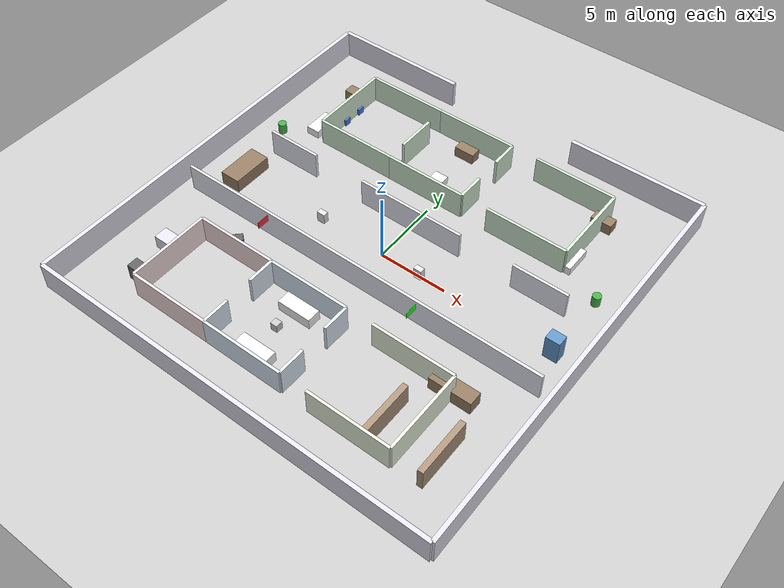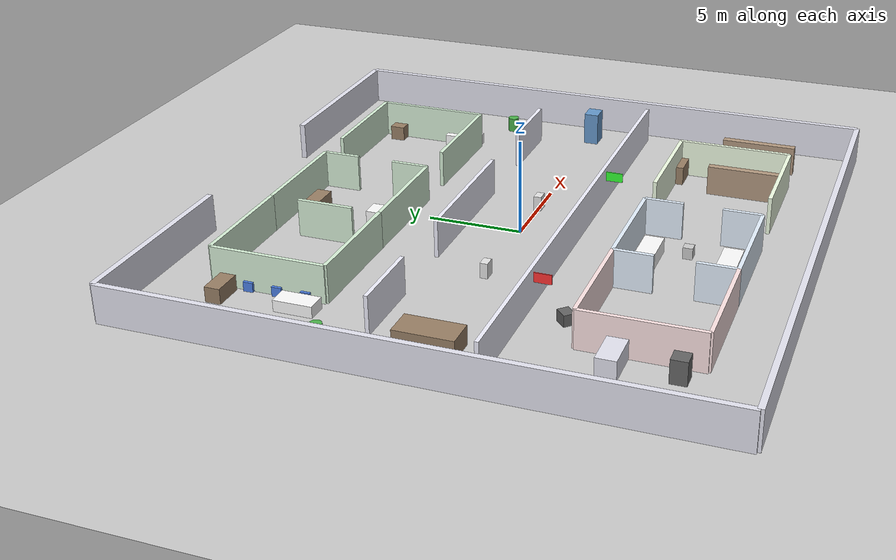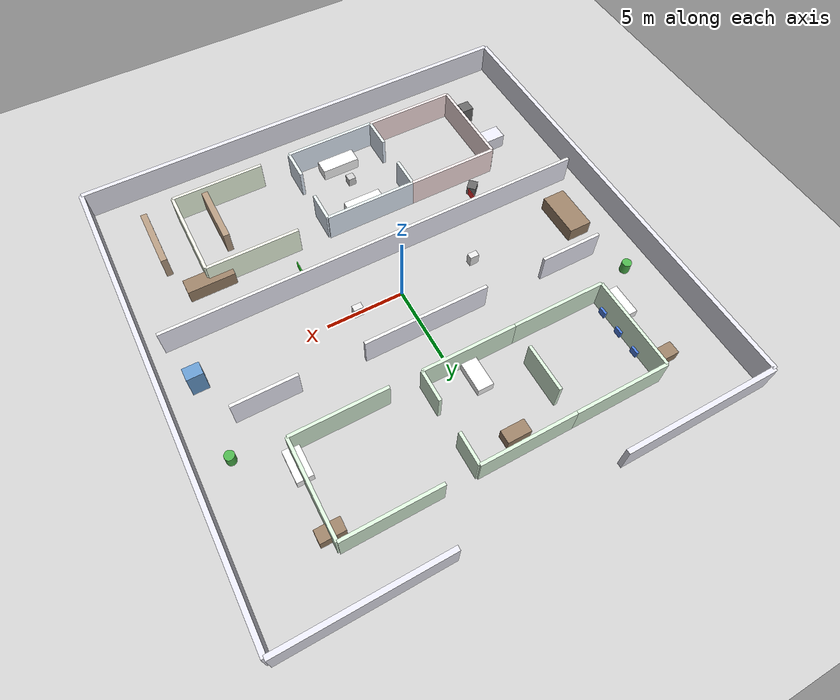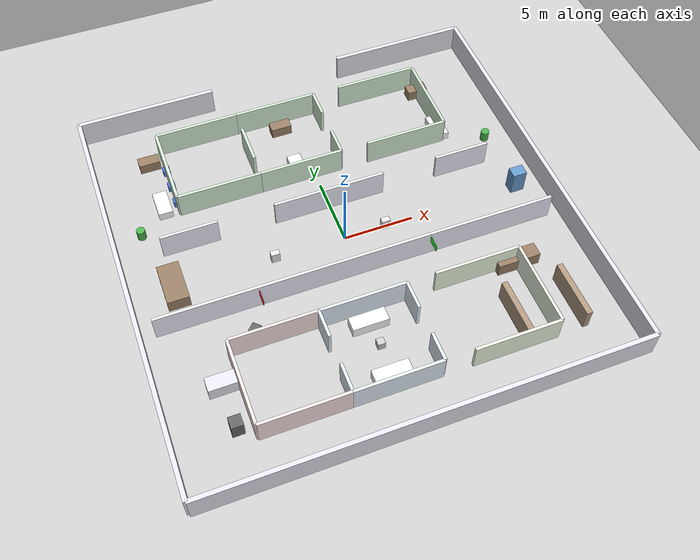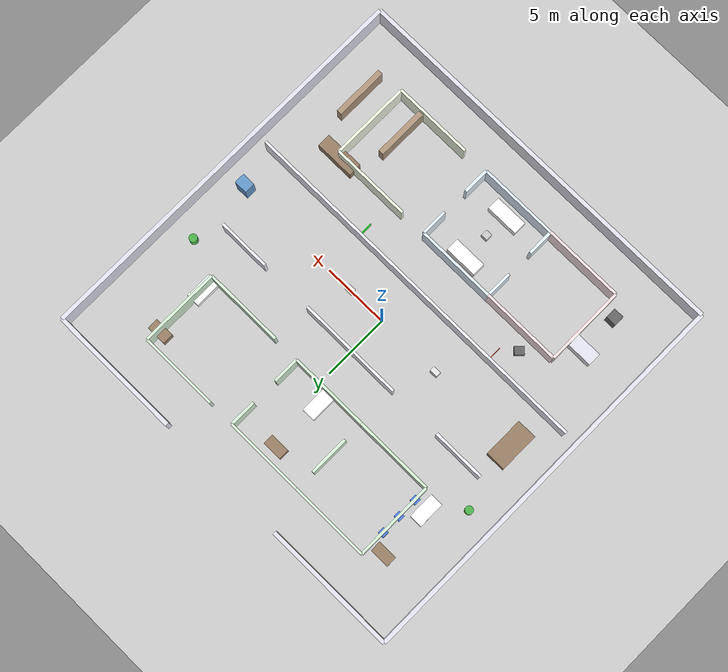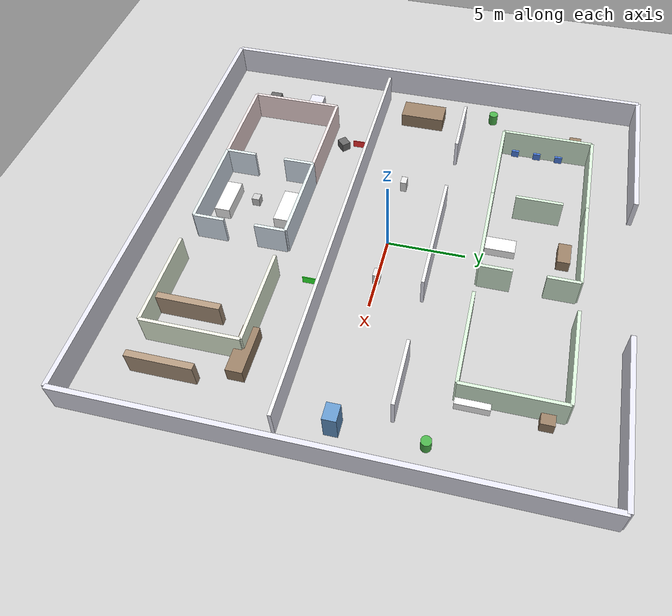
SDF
<?xml version="1.0"?>
<sdf version="1.6">
  <world name="hospital_world">

    <include>
      <uri>model://ground_plane</uri>
    </include>

    <include>
      <uri>model://sun</uri>
    </include>

    <!-- Configuration de l'éclairage -->
    <light name='hospital_light_1' type='point'>
      <pose>0 0 5 0 0 0</pose>
      <diffuse>1 1 1 1</diffuse>
      <specular>0.5 0.5 0.5 1</specular>
      <attenuation>
        <range>50</range>
        <constant>0.5</constant>
        <linear>0.01</linear>
        <quadratic>0.001</quadratic>
      </attenuation>
    </light>

    <!-- ========== STRUCTURE PRINCIPALE DE L'HÔPITAL ========== -->

    <!-- Mur extérieur Nord avec porte d'entrée principale -->
    <model name="exterior_wall_north_west">
      <pose>-10 15 1 0 0 0</pose>
      <static>true</static>
      <link name="link">
        <collision name="collision">
          <geometry>
            <box><size>10 0.3 2</size></box>
          </geometry>
        </collision>
        <visual name="visual">
          <geometry>
            <box><size>10 0.3 2</size></box>
          </geometry>
          <material>
            <ambient>0.9 0.9 0.95 1</ambient>
            <diffuse>0.9 0.9 0.95 1</diffuse>
          </material>
        </visual>
      </link>
    </model>

    <model name="exterior_wall_north_east">
      <pose>10 15 1 0 0 0</pose>
      <static>true</static>
      <link name="link">
        <collision name="collision">
          <geometry>
            <box><size>10 0.3 2</size></box>
          </geometry>
        </collision>
        <visual name="visual">
          <geometry>
            <box><size>10 0.3 2</size></box>
          </geometry>
          <material>
            <ambient>0.9 0.9 0.95 1</ambient>
            <diffuse>0.9 0.9 0.95 1</diffuse>
          </material>
        </visual>
      </link>
    </model>

    <!-- Mur extérieur Sud -->
    <model name="exterior_wall_south">
      <pose>0 -15 1 0 0 0</pose>
      <static>true</static>
      <link name="link">
        <collision name="collision">
          <geometry>
            <box><size>30 0.3 2</size></box>
          </geometry>
        </collision>
        <visual name="visual">
          <geometry>
            <box><size>30 0.3 2</size></box>
          </geometry>
          <material>
            <ambient>0.9 0.9 0.95 1</ambient>
            <diffuse>0.9 0.9 0.95 1</diffuse>
          </material>
        </visual>
      </link>
    </model>

    <!-- Mur extérieur Est -->
    <model name="exterior_wall_east">
      <pose>15 0 1 0 0 0</pose>
      <static>true</static>
      <link name="link">
        <collision name="collision">
          <geometry>
            <box><size>0.3 30 2</size></box>
          </geometry>
        </collision>
        <visual name="visual">
          <geometry>
            <box><size>0.3 30 2</size></box>
          </geometry>
          <material>
            <ambient>0.9 0.9 0.95 1</ambient>
            <diffuse>0.9 0.9 0.95 1</diffuse>
          </material>
        </visual>
      </link>
    </model>

    <!-- Mur extérieur Ouest -->
    <model name="exterior_wall_west">
      <pose>-15 0 1 0 0 0</pose>
      <static>true</static>
      <link name="link">
        <collision name="collision">
          <geometry>
            <box><size>0.3 30 2</size></box>
          </geometry>
        </collision>
        <visual name="visual">
          <geometry>
            <box><size>0.3 30 2</size></box>
          </geometry>
          <material>
            <ambient>0.9 0.9 0.95 1</ambient>
            <diffuse>0.9 0.9 0.95 1</diffuse>
          </material>
        </visual>
      </link>
    </model>

    <!-- ========== COULOIR PRINCIPAL (Horizontal) ========== -->

    <!-- Mur couloir principal Nord avec portes vers les salles -->
    <model name="main_corridor_wall_north_west">
      <pose>-10 3 1 0 0 0</pose>
      <static>true</static>
      <link name="link">
        <collision name="collision">
          <geometry>
            <box><size>4 0.2 2</size></box>
          </geometry>
        </collision>
        <visual name="visual">
          <geometry>
            <box><size>4 0.2 2</size></box>
          </geometry>
          <material>
            <ambient>0.95 0.95 1 1</ambient>
            <diffuse>0.95 0.95 1 1</diffuse>
          </material>
        </visual>
      </link>
    </model>

    <model name="main_corridor_wall_north_center">
      <pose>0 3 1 0 0 0</pose>
      <static>true</static>
      <link name="link">
        <collision name="collision">
          <geometry>
            <box><size>8 0.2 2</size></box>
          </geometry>
        </collision>
        <visual name="visual">
          <geometry>
            <box><size>8 0.2 2</size></box>
          </geometry>
          <material>
            <ambient>0.95 0.95 1 1</ambient>
            <diffuse>0.95 0.95 1 1</diffuse>
          </material>
        </visual>
      </link>
    </model>

    <model name="main_corridor_wall_north_east">
      <pose>10 3 1 0 0 0</pose>
      <static>true</static>
      <link name="link">
        <collision name="collision">
          <geometry>
            <box><size>4 0.2 2</size></box>
          </geometry>
        </collision>
        <visual name="visual">
          <geometry>
            <box><size>4 0.2 2</size></box>
          </geometry>
          <material>
            <ambient>0.95 0.95 1 1</ambient>
            <diffuse>0.95 0.95 1 1</diffuse>
          </material>
        </visual>
      </link>
    </model>

    <!-- Mur couloir principal Sud -->
    <model name="main_corridor_wall_south">
      <pose>0 -3 1 0 0 0</pose>
      <static>true</static>
      <link name="link">
        <collision name="collision">
          <geometry>
            <box><size>28 0.2 2</size></box>
          </geometry>
        </collision>
        <visual name="visual">
          <geometry>
            <box><size>28 0.2 2</size></box>
          </geometry>
          <material>
            <ambient>0.95 0.95 1 1</ambient>
            <diffuse>0.95 0.95 1 1</diffuse>
          </material>
        </visual>
      </link>
    </model>

    <!-- ========== RÉCEPTION (Zone Ouest) ========== -->

    <!-- Comptoir de réception -->
    <model name="reception_desk">
      <pose>-12 0 0.5 0 0 1.5708</pose>
      <static>true</static>
      <link name="link">
        <collision name="collision">
          <geometry>
            <box><size>3 1.5 1</size></box>
          </geometry>
        </collision>
        <visual name="visual">
          <geometry>
            <box><size>3 1.5 1</size></box>
          </geometry>
          <material>
            <ambient>0.4 0.3 0.2 1</ambient>
            <diffuse>0.6 0.5 0.4 1</diffuse>
          </material>
        </visual>
      </link>
    </model>

    <!-- Chaises salle d'attente -->
    <model name="waiting_chair_1">
      <pose>-10 7 0.25 0 0 0</pose>
      <static>true</static>
      <link name="link">
        <collision name="collision">
          <geometry>
            <box><size>0.5 0.5 0.5</size></box>
          </geometry>
        </collision>
        <visual name="visual">
          <geometry>
            <box><size>0.5 0.5 0.5</size></box>
          </geometry>
          <material>
            <ambient>0.2 0.4 0.8 1</ambient>
            <diffuse>0.3 0.5 0.9 1</diffuse>
          </material>
        </visual>
      </link>
    </model>

    <model name="waiting_chair_2">
      <pose>-10 8.5 0.25 0 0 0</pose>
      <static>true</static>
      <link name="link">
        <collision name="collision">
          <geometry>
            <box><size>0.5 0.5 0.5</size></box>
          </geometry>
        </collision>
        <visual name="visual">
          <geometry>
            <box><size>0.5 0.5 0.5</size></box>
          </geometry>
          <material>
            <ambient>0.2 0.4 0.8 1</ambient>
            <diffuse>0.3 0.5 0.9 1</diffuse>
          </material>
        </visual>
      </link>
    </model>

    <model name="waiting_chair_3">
      <pose>-10 10 0.25 0 0 0</pose>
      <static>true</static>
      <link name="link">
        <collision name="collision">
          <geometry>
            <box><size>0.5 0.5 0.5</size></box>
          </geometry>
        </collision>
        <visual name="visual">
          <geometry>
            <box><size>0.5 0.5 0.5</size></box>
          </geometry>
          <material>
            <ambient>0.2 0.4 0.8 1</ambient>
            <diffuse>0.3 0.5 0.9 1</diffuse>
          </material>
        </visual>
      </link>
    </model>

    <!-- ========== SALLE DE CONSULTATION 1 (Nord-Ouest) ========== -->

    <!-- Mur séparation consultation 1 avec PORTE -->
    <model name="consult1_wall_north">
      <pose>-7 12 1 0 0 0</pose>
      <static>true</static>
      <link name="link">
        <collision name="collision">
          <geometry>
            <box><size>6 0.2 2</size></box>
          </geometry>
        </collision>
        <visual name="visual">
          <geometry>
            <box><size>6 0.2 2</size></box>
          </geometry>
          <material>
            <ambient>0.85 0.95 0.85 1</ambient>
            <diffuse>0.85 0.95 0.85 1</diffuse>
          </material>
        </visual>
      </link>
    </model>

    <model name="consult1_wall_south">
      <pose>-7 6 1 0 0 0</pose>
      <static>true</static>
      <link name="link">
        <collision name="collision">
          <geometry>
            <box><size>6 0.2 2</size></box>
          </geometry>
        </collision>
        <visual name="visual">
          <geometry>
            <box><size>6 0.2 2</size></box>
          </geometry>
          <material>
            <ambient>0.85 0.95 0.85 1</ambient>
            <diffuse>0.85 0.95 0.85 1</diffuse>
          </material>
        </visual>
      </link>
    </model>

    <model name="consult1_wall_west">
      <pose>-10 9 1 0 0 0</pose>
      <static>true</static>
      <link name="link">
        <collision name="collision">
          <geometry>
            <box><size>0.2 6 2</size></box>
          </geometry>
        </collision>
        <visual name="visual">
          <geometry>
            <box><size>0.2 6 2</size></box>
          </geometry>
          <material>
            <ambient>0.85 0.95 0.85 1</ambient>
            <diffuse>0.85 0.95 0.85 1</diffuse>
          </material>
        </visual>
      </link>
    </model>

    <!-- PORTE de la consultation 1 (entre -4 et -4) -->
    <!-- Espace vide pour la porte : de x=-5 à x=-1, y=9 -->

    <!-- Bureau médecin consultation 1 -->
    <model name="consult1_desk">
      <pose>-11 11 0.4 0 0 0</pose>
      <static>true</static>
      <link name="link">
        <collision name="collision">
          <geometry>
            <box><size>1.5 0.8 0.8</size></box>
          </geometry>
        </collision>
        <visual name="visual">
          <geometry>
            <box><size>1.5 0.8 0.8</size></box>
          </geometry>
          <material>
            <ambient>0.5 0.4 0.3 1</ambient>
            <diffuse>0.6 0.5 0.4 1</diffuse>
          </material>
        </visual>
      </link>
    </model>

    <!-- Lit consultation 1 -->
    <model name="consult1_bed">
      <pose>-11 7 0.3 0 0 1.5708</pose>
      <static>true</static>
      <link name="link">
        <collision name="collision">
          <geometry>
            <box><size>2 1 0.6</size></box>
          </geometry>
        </collision>
        <visual name="visual">
          <geometry>
            <box><size>2 1 0.6</size></box>
          </geometry>
          <material>
            <ambient>0.9 0.9 0.9 1</ambient>
            <diffuse>1 1 1 1</diffuse>
          </material>
        </visual>
      </link>
    </model>

    <!-- ========== SALLE DE CONSULTATION 2 (Centre-Nord) ========== -->

    <!-- Mur séparation consultation 2 Ouest avec PORTE -->
    <model name="consult2_wall_north">
      <pose>-1 12 1 0 0 0</pose>
      <static>true</static>
      <link name="link">
        <collision name="collision">
          <geometry>
            <box><size>6 0.2 2</size></box>
          </geometry>
        </collision>
        <visual name="visual">
          <geometry>
            <box><size>6 0.2 2</size></box>
          </geometry>
          <material>
            <ambient>0.85 0.95 0.85 1</ambient>
            <diffuse>0.85 0.95 0.85 1</diffuse>
          </material>
        </visual>
      </link>
    </model>

    <model name="consult2_wall_south">
      <pose>-1 6 1 0 0 0</pose>
      <static>true</static>
      <link name="link">
        <collision name="collision">
          <geometry>
            <box><size>6 0.2 2</size></box>
          </geometry>
        </collision>
        <visual name="visual">
          <geometry>
            <box><size>6 0.2 2</size></box>
          </geometry>
          <material>
            <ambient>0.85 0.95 0.85 1</ambient>
            <diffuse>0.85 0.95 0.85 1</diffuse>
          </material>
        </visual>
      </link>
    </model>

    <model name="consult2_wall_west">
      <pose>-4 9 1 0 0 0</pose>
      <static>true</static>
      <link name="link">
        <collision name="collision">
          <geometry>
            <box><size>0.2 3 2</size></box>
          </geometry>
        </collision>
        <visual name="visual">
          <geometry>
            <box><size>0.2 3 2</size></box>
          </geometry>
          <material>
            <ambient>0.85 0.95 0.85 1</ambient>
            <diffuse>0.85 0.95 0.85 1</diffuse>
          </material>
        </visual>
      </link>
    </model>

    <model name="consult2_wall_east_part1">
      <pose>2 11 1 0 0 0</pose>
      <static>true</static>
      <link name="link">
        <collision name="collision">
          <geometry>
            <box><size>0.2 2 2</size></box>
          </geometry>
        </collision>
        <visual name="visual">
          <geometry>
            <box><size>0.2 2 2</size></box>
          </geometry>
          <material>
            <ambient>0.85 0.95 0.85 1</ambient>
            <diffuse>0.85 0.95 0.85 1</diffuse>
          </material>
        </visual>
      </link>
    </model>

    <model name="consult2_wall_east_part2">
      <pose>2 7 1 0 0 0</pose>
      <static>true</static>
      <link name="link">
        <collision name="collision">
          <geometry>
            <box><size>0.2 2 2</size></box>
          </geometry>
        </collision>
        <visual name="visual">
          <geometry>
            <box><size>0.2 2 2</size></box>
          </geometry>
          <material>
            <ambient>0.85 0.95 0.85 1</ambient>
            <diffuse>0.85 0.95 0.85 1</diffuse>
          </material>
        </visual>
      </link>
    </model>

    <!-- PORTE de la consultation 2 (entre x=2, y=9) -->
    <!-- Espace vide pour la porte : x=2, y entre 8 et 10 -->

    <!-- Bureau consultation 2 -->
    <model name="consult2_desk">
      <pose>-1 11 0.4 0 0 0</pose>
      <static>true</static>
      <link name="link">
        <collision name="collision">
          <geometry>
            <box><size>1.5 0.8 0.8</size></box>
          </geometry>
        </collision>
        <visual name="visual">
          <geometry>
            <box><size>1.5 0.8 0.8</size></box>
          </geometry>
          <material>
            <ambient>0.5 0.4 0.3 1</ambient>
            <diffuse>0.6 0.5 0.4 1</diffuse>
          </material>
        </visual>
      </link>
    </model>

    <!-- Lit consultation 2 -->
    <model name="consult2_bed">
      <pose>-1 7 0.3 0 0 1.5708</pose>
      <static>true</static>
      <link name="link">
        <collision name="collision">
          <geometry>
            <box><size>2 1 0.6</size></box>
          </geometry>
        </collision>
        <visual name="visual">
          <geometry>
            <box><size>2 1 0.6</size></box>
          </geometry>
          <material>
            <ambient>0.9 0.9 0.9 1</ambient>
            <diffuse>1 1 1 1</diffuse>
          </material>
        </visual>
      </link>
    </model>

    <!-- ========== SALLE DE CONSULTATION 3 (Nord-Est) ========== -->

    <!-- Mur séparation consultation 3 avec PORTE -->
    <model name="consult3_wall_north">
      <pose>7 12 1 0 0 0</pose>
      <static>true</static>
      <link name="link">
        <collision name="collision">
          <geometry>
            <box><size>6 0.2 2</size></box>
          </geometry>
        </collision>
        <visual name="visual">
          <geometry>
            <box><size>6 0.2 2</size></box>
          </geometry>
          <material>
            <ambient>0.85 0.95 0.85 1</ambient>
            <diffuse>0.85 0.95 0.85 1</diffuse>
          </material>
        </visual>
      </link>
    </model>

    <model name="consult3_wall_south">
      <pose>7 6 1 0 0 0</pose>
      <static>true</static>
      <link name="link">
        <collision name="collision">
          <geometry>
            <box><size>6 0.2 2</size></box>
          </geometry>
        </collision>
        <visual name="visual">
          <geometry>
            <box><size>6 0.2 2</size></box>
          </geometry>
          <material>
            <ambient>0.85 0.95 0.85 1</ambient>
            <diffuse>0.85 0.95 0.85 1</diffuse>
          </material>
        </visual>
      </link>
    </model>

    <model name="consult3_wall_east">
      <pose>10 9 1 0 0 0</pose>
      <static>true</static>
      <link name="link">
        <collision name="collision">
          <geometry>
            <box><size>0.2 6 2</size></box>
          </geometry>
        </collision>
        <visual name="visual">
          <geometry>
            <box><size>0.2 6 2</size></box>
          </geometry>
          <material>
            <ambient>0.85 0.95 0.85 1</ambient>
            <diffuse>0.85 0.95 0.85 1</diffuse>
          </material>
        </visual>
      </link>
    </model>

    <!-- PORTE de la consultation 3 (entre x=4 et x=4) -->
    <!-- Espace vide pour la porte : de x=4 à x=10, y=9 -->

    <!-- Bureau consultation 3 -->
    <model name="consult3_desk">
      <pose>10 11 0.4 0 0 0</pose>
      <static>true</static>
      <link name="link">
        <collision name="collision">
          <geometry>
            <box><size>1.5 0.8 0.8</size></box>
          </geometry>
        </collision>
        <visual name="visual">
          <geometry>
            <box><size>1.5 0.8 0.8</size></box>
          </geometry>
          <material>
            <ambient>0.5 0.4 0.3 1</ambient>
            <diffuse>0.6 0.5 0.4 1</diffuse>
          </material>
        </visual>
      </link>
    </model>

    <!-- Lit consultation 3 -->
    <model name="consult3_bed">
      <pose>10 7 0.3 0 0 1.5708</pose>
      <static>true</static>
      <link name="link">
        <collision name="collision">
          <geometry>
            <box><size>2 1 0.6</size></box>
          </geometry>
        </collision>
        <visual name="visual">
          <geometry>
            <box><size>2 1 0.6</size></box>
          </geometry>
          <material>
            <ambient>0.9 0.9 0.9 1</ambient>
            <diffuse>1 1 1 1</diffuse>
          </material>
        </visual>
      </link>
    </model>

    <!-- ========== SALLE D'URGENCE (Sud-Ouest) ========== -->

    <!-- Mur séparation urgence avec PORTE -->
    <model name="emergency_wall_north">
      <pose>-7 -6 1 0 0 0</pose>
      <static>true</static>
      <link name="link">
        <collision name="collision">
          <geometry>
            <box><size>6 0.2 2</size></box>
          </geometry>
        </collision>
        <visual name="visual">
          <geometry>
            <box><size>6 0.2 2</size></box>
          </geometry>
          <material>
            <ambient>1 0.85 0.85 1</ambient>
            <diffuse>1 0.9 0.9 1</diffuse>
          </material>
        </visual>
      </link>
    </model>

    <model name="emergency_wall_south">
      <pose>-7 -12 1 0 0 0</pose>
      <static>true</static>
      <link name="link">
        <collision name="collision">
          <geometry>
            <box><size>6 0.2 2</size></box>
          </geometry>
        </collision>
        <visual name="visual">
          <geometry>
            <box><size>6 0.2 2</size></box>
          </geometry>
          <material>
            <ambient>1 0.85 0.85 1</ambient>
            <diffuse>1 0.9 0.9 1</diffuse>
          </material>
        </visual>
      </link>
    </model>

    <model name="emergency_wall_west">
      <pose>-10 -9 1 0 0 0</pose>
      <static>true</static>
      <link name="link">
        <collision name="collision">
          <geometry>
            <box><size>0.2 6 2</size></box>
          </geometry>
        </collision>
        <visual name="visual">
          <geometry>
            <box><size>0.2 6 2</size></box>
          </geometry>
          <material>
            <ambient>1 0.85 0.85 1</ambient>
            <diffuse>1 0.9 0.9 1</diffuse>
          </material>
        </visual>
      </link>
    </model>

    <!-- PORTE des urgences (entre x=-4 et x=-4) -->
    <!-- Espace vide pour la porte : de x=-4 à x=-4, y=-9 -->

    <!-- Table d'opération urgence -->
    <model name="emergency_table">
      <pose>-11 -8 0.5 0 0 0</pose>
      <static>true</static>
      <link name="link">
        <collision name="collision">
          <geometry>
            <box><size>2 1 1</size></box>
          </geometry>
        </collision>
        <visual name="visual">
          <geometry>
            <box><size>2 1 1</size></box>
          </geometry>
          <material>
            <ambient>0.8 0.8 0.85 1</ambient>
            <diffuse>0.9 0.9 0.95 1</diffuse>
          </material>
        </visual>
      </link>
    </model>

    <!-- Équipement médical urgence -->
    <model name="emergency_equipment">
      <pose>-11 -11 0.6 0 0 0</pose>
      <static>true</static>
      <link name="link">
        <collision name="collision">
          <geometry>
            <box><size>0.8 0.8 1.2</size></box>
          </geometry>
        </collision>
        <visual name="visual">
          <geometry>
            <box><size>0.8 0.8 1.2</size></box>
          </geometry>
          <material>
            <ambient>0.3 0.3 0.3 1</ambient>
            <diffuse>0.4 0.4 0.4 1</diffuse>
          </material>
        </visual>
      </link>
    </model>

    <!-- ========== LABORATOIRE (Sud-Centre) ========== -->

    <!-- Mur séparation labo avec PORTE -->
    <model name="lab_wall_north">
      <pose>-1 -6 1 0 0 0</pose>
      <static>true</static>
      <link name="link">
        <collision name="collision">
          <geometry>
            <box><size>6 0.2 2</size></box>
          </geometry>
        </collision>
        <visual name="visual">
          <geometry>
            <box><size>6 0.2 2</size></box>
          </geometry>
          <material>
            <ambient>0.85 0.9 1 1</ambient>
            <diffuse>0.9 0.95 1 1</diffuse>
          </material>
        </visual>
      </link>
    </model>

    <model name="lab_wall_south">
      <pose>-1 -12 1 0 0 0</pose>
      <static>true</static>
      <link name="link">
        <collision name="collision">
          <geometry>
            <box><size>6 0.2 2</size></box>
          </geometry>
        </collision>
        <visual name="visual">
          <geometry>
            <box><size>6 0.2 2</size></box>
          </geometry>
          <material>
            <ambient>0.85 0.9 1 1</ambient>
            <diffuse>0.9 0.95 1 1</diffuse>
          </material>
        </visual>
      </link>
    </model>

    <model name="lab_wall_west_part1">
      <pose>-4 -11 1 0 0 0</pose>
      <static>true</static>
      <link name="link">
        <collision name="collision">
          <geometry>
            <box><size>0.2 2 2</size></box>
          </geometry>
        </collision>
        <visual name="visual">
          <geometry>
            <box><size>0.2 2 2</size></box>
          </geometry>
          <material>
            <ambient>0.85 0.9 1 1</ambient>
            <diffuse>0.9 0.95 1 1</diffuse>
          </material>
        </visual>
      </link>
    </model>

    <model name="lab_wall_west_part2">
      <pose>-4 -7 1 0 0 0</pose>
      <static>true</static>
      <link name="link">
        <collision name="collision">
          <geometry>
            <box><size>0.2 2 2</size></box>
          </geometry>
        </collision>
        <visual name="visual">
          <geometry>
            <box><size>0.2 2 2</size></box>
          </geometry>
          <material>
            <ambient>0.85 0.9 1 1</ambient>
            <diffuse>0.9 0.95 1 1</diffuse>
          </material>
        </visual>
      </link>
    </model>

    <model name="lab_wall_east_part1">
      <pose>2 -11 1 0 0 0</pose>
      <static>true</static>
      <link name="link">
        <collision name="collision">
          <geometry>
            <box><size>0.2 2 2</size></box>
          </geometry>
        </collision>
        <visual name="visual">
          <geometry>
            <box><size>0.2 2 2</size></box>
          </geometry>
          <material>
            <ambient>0.85 0.9 1 1</ambient>
            <diffuse>0.9 0.95 1 1</diffuse>
          </material>
        </visual>
      </link>
    </model>

    <model name="lab_wall_east_part2">
      <pose>2 -7 1 0 0 0</pose>
      <static>true</static>
      <link name="link">
        <collision name="collision">
          <geometry>
            <box><size>0.2 2 2</size></box>
          </geometry>
        </collision>
        <visual name="visual">
          <geometry>
            <box><size>0.2 2 2</size></box>
          </geometry>
          <material>
            <ambient>0.85 0.9 1 1</ambient>
            <diffuse>0.9 0.95 1 1</diffuse>
          </material>
        </visual>
      </link>
    </model>

    <!-- PORTE du labo (entre x=-4 et x=2, y=-9) -->
    <!-- Espace vide pour la porte : x entre -4 et 2, y=-9 -->

    <!-- Tables de laboratoire -->
    <model name="lab_table_1">
      <pose>-1 -7 0.4 0 0 0</pose>
      <static>true</static>
      <link name="link">
        <collision name="collision">
          <geometry>
            <box><size>2.5 1 0.8</size></box>
          </geometry>
        </collision>
        <visual name="visual">
          <geometry>
            <box><size>2.5 1 0.8</size></box>
          </geometry>
          <material>
            <ambient>0.9 0.9 0.9 1</ambient>
            <diffuse>1 1 1 1</diffuse>
          </material>
        </visual>
      </link>
    </model>

    <model name="lab_table_2">
      <pose>-1 -11 0.4 0 0 0</pose>
      <static>true</static>
      <link name="link">
        <collision name="collision">
          <geometry>
            <box><size>2.5 1 0.8</size></box>
          </geometry>
        </collision>
        <visual name="visual">
          <geometry>
            <box><size>2.5 1 0.8</size></box>
          </geometry>
          <material>
            <ambient>0.9 0.9 0.9 1</ambient>
            <diffuse>1 1 1 1</diffuse>
          </material>
        </visual>
      </link>
    </model>

    <!-- Équipement labo -->
    <model name="lab_equipment">
      <pose>-1 -9 0.9 0 0 0</pose>
      <static>true</static>
      <link name="link">
        <collision name="collision">
          <geometry>
            <box><size>0.5 0.5 0.6</size></box>
          </geometry>
        </collision>
        <visual name="visual">
          <geometry>
            <box><size>0.5 0.5 0.6</size></box>
          </geometry>
          <material>
            <ambient>0.7 0.7 0.7 1</ambient>
            <diffuse>0.8 0.8 0.8 1</diffuse>
          </material>
        </visual>
      </link>
    </model>

    <!-- ========== PHARMACIE (Sud-Est) ========== -->

    <!-- Mur séparation pharmacie avec PORTE -->
    <model name="pharmacy_wall_north">
      <pose>7 -6 1 0 0 0</pose>
      <static>true</static>
      <link name="link">
        <collision name="collision">
          <geometry>
            <box><size>6 0.2 2</size></box>
          </geometry>
        </collision>
        <visual name="visual">
          <geometry>
            <box><size>6 0.2 2</size></box>
          </geometry>
          <material>
            <ambient>0.95 1 0.85 1</ambient>
            <diffuse>0.95 1 0.9 1</diffuse>
          </material>
        </visual>
      </link>
    </model>

    <model name="pharmacy_wall_south">
      <pose>7 -12 1 0 0 0</pose>
      <static>true</static>
      <link name="link">
        <collision name="collision">
          <geometry>
            <box><size>6 0.2 2</size></box>
          </geometry>
        </collision>
        <visual name="visual">
          <geometry>
            <box><size>6 0.2 2</size></box>
          </geometry>
          <material>
            <ambient>0.95 1 0.85 1</ambient>
            <diffuse>0.95 1 0.9 1</diffuse>
          </material>
        </visual>
      </link>
    </model>

    <model name="pharmacy_wall_east">
      <pose>10 -9 1 0 0 0</pose>
      <static>true</static>
      <link name="link">
        <collision name="collision">
          <geometry>
            <box><size>0.2 6 2</size></box>
          </geometry>
        </collision>
        <visual name="visual">
          <geometry>
            <box><size>0.2 6 2</size></box>
          </geometry>
          <material>
            <ambient>0.95 1 0.85 1</ambient>
            <diffuse>0.95 1 0.9 1</diffuse>
          </material>
        </visual>
      </link>
    </model>

    <!-- PORTE de la pharmacie (entre x=4 et x=4) -->
    <!-- Espace vide pour la porte : de x=4 à x=10, y=-9 -->

    <!-- Comptoir pharmacie -->
    <model name="pharmacy_counter">
      <pose>10 -6 0.5 0 0 0</pose>
      <static>true</static>
      <link name="link">
        <collision name="collision">
          <geometry>
            <box><size>3 1 1</size></box>
          </geometry>
        </collision>
        <visual name="visual">
          <geometry>
            <box><size>3 1 1</size></box>
          </geometry>
          <material>
            <ambient>0.5 0.4 0.3 1</ambient>
            <diffuse>0.6 0.5 0.4 1</diffuse>
          </material>
        </visual>
      </link>
    </model>

    <!-- Étagères pharmacie -->
    <model name="pharmacy_shelf_1">
      <pose>12 -10 0.8 0 0 1.5708</pose>
      <static>true</static>
      <link name="link">
        <collision name="collision">
          <geometry>
            <box><size>4 0.4 1.6</size></box>
          </geometry>
        </collision>
        <visual name="visual">
          <geometry>
            <box><size>4 0.4 1.6</size></box>
          </geometry>
          <material>
            <ambient>0.6 0.5 0.4 1</ambient>
            <diffuse>0.7 0.6 0.5 1</diffuse>
          </material>
        </visual>
      </link>
    </model>

    <model name="pharmacy_shelf_2">
      <pose>8 -10 0.8 0 0 1.5708</pose>
      <static>true</static>
      <link name="link">
        <collision name="collision">
          <geometry>
            <box><size>4 0.4 1.6</size></box>
          </geometry>
        </collision>
        <visual name="visual">
          <geometry>
            <box><size>4 0.4 1.6</size></box>
          </geometry>
          <material>
            <ambient>0.6 0.5 0.4 1</ambient>
            <diffuse>0.7 0.6 0.5 1</diffuse>
          </material>
        </visual>
      </link>
    </model>

    <!-- ========== OBSTACLES DYNAMIQUES (Chariots, etc.) ========== -->

    <!-- Chariot médical 1 -->
    <model name="medical_cart_1">
      <pose>3 0 0.4 0 0 0</pose>
      <static>true</static>
      <link name="link">
        <collision name="collision">
          <geometry>
            <box><size>0.6 0.4 0.8</size></box>
          </geometry>
        </collision>
        <visual name="visual">
          <geometry>
            <box><size>0.6 0.4 0.8</size></box>
          </geometry>
          <material>
            <ambient>0.8 0.8 0.8 1</ambient>
            <diffuse>0.9 0.9 0.9 1</diffuse>
          </material>
        </visual>
      </link>
    </model>

    <!-- Chariot médical 2 -->
    <model name="medical_cart_2">
      <pose>-5 0 0.4 0 0 0</pose>
      <static>true</static>
      <link name="link">
        <collision name="collision">
          <geometry>
            <box><size>0.6 0.4 0.8</size></box>
          </geometry>
        </collision>
        <visual name="visual">
          <geometry>
            <box><size>0.6 0.4 0.8</size></box>
          </geometry>
          <material>
            <ambient>0.8 0.8 0.8 1</ambient>
            <diffuse>0.9 0.9 0.9 1</diffuse>
          </material>
        </visual>
      </link>
    </model>

    <!-- Fauteuils roulants -->
    <model name="wheelchair_1">
      <pose>-8 -5 0.3 0 0 0.785</pose>
      <static>true</static>
      <link name="link">
        <collision name="collision">
          <geometry>
            <box><size>0.7 0.6 0.6</size></box>
          </geometry>
        </collision>
        <visual name="visual">
          <geometry>
            <box><size>0.7 0.6 0.6</size></box>
          </geometry>
          <material>
            <ambient>0.3 0.3 0.3 1</ambient>
            <diffuse>0.4 0.4 0.4 1</diffuse>
          </material>
        </visual>
      </link>
    </model>

    <!-- Distributeur automatique -->
    <model name="vending_machine">
      <pose>13 0 0.9 0 0 -1.5708</pose>
      <static>true</static>
      <link name="link">
        <collision name="collision">
          <geometry>
            <box><size>0.8 1 1.8</size></box>
          </geometry>
        </collision>
        <visual name="visual">
          <geometry>
            <box><size>0.8 1 1.8</size></box>
          </geometry>
          <material>
            <ambient>0.3 0.5 0.7 1</ambient>
            <diffuse>0.4 0.6 0.8 1</diffuse>
          </material>
        </visual>
      </link>
    </model>

    <!-- Plantes décoratives -->
    <model name="plant_1">
      <pose>-13 5 0.4 0 0 0</pose>
      <static>true</static>
      <link name="link">
        <collision name="collision">
          <geometry>
            <cylinder>
              <radius>0.3</radius>
              <length>0.8</length>
            </cylinder>
          </geometry>
        </collision>
        <visual name="visual">
          <geometry>
            <cylinder>
              <radius>0.3</radius>
              <length>0.8</length>
            </cylinder>
          </geometry>
          <material>
            <ambient>0.2 0.6 0.2 1</ambient>
            <diffuse>0.3 0.7 0.3 1</diffuse>
          </material>
        </visual>
      </link>
    </model>

    <model name="plant_2">
      <pose>13 5 0.4 0 0 0</pose>
      <static>true</static>
      <link name="link">
        <collision name="collision">
          <geometry>
            <cylinder>
              <radius>0.3</radius>
              <length>0.8</length>
            </cylinder>
          </geometry>
        </collision>
        <visual name="visual">
          <geometry>
            <cylinder>
              <radius>0.3</radius>
              <length>0.8</length>
            </cylinder>
          </geometry>
          <material>
            <ambient>0.2 0.6 0.2 1</ambient>
            <diffuse>0.3 0.7 0.3 1</diffuse>
          </material>
        </visual>
      </link>
    </model>

    <!-- Signalisation -->
    <model name="sign_emergency">
      <pose>-7 -3.5 1.5 0 0 0</pose>
      <static>true</static>
      <link name="link">
        <visual name="visual">
          <geometry>
            <box><size>0.05 1 0.5</size></box>
          </geometry>
          <material>
            <ambient>1 0 0 1</ambient>
            <diffuse>1 0.2 0.2 1</diffuse>
          </material>
        </visual>
      </link>
    </model>

    <model name="sign_pharmacy">
      <pose>5 -3.5 1.5 0 0 0</pose>
      <static>true</static>
      <link name="link">
        <visual name="visual">
          <geometry>
            <box><size>0.05 1 0.5</size></box>
          </geometry>
          <material>
            <ambient>0 1 0 1</ambient>
            <diffuse>0.2 1 0.2 1</diffuse>
          </material>
        </visual>
      </link>
    </model>
  </world>
</sdf>
